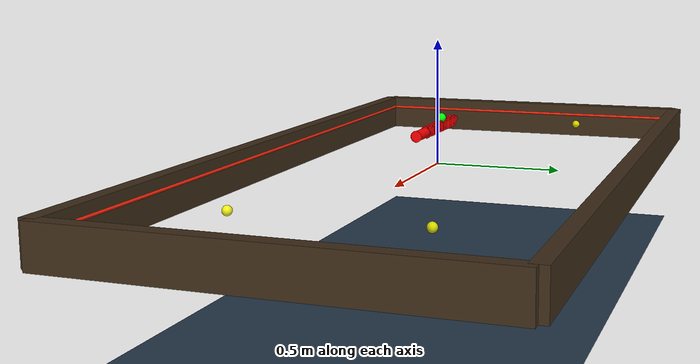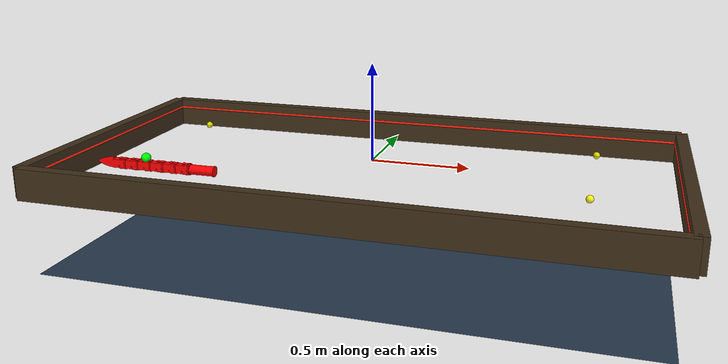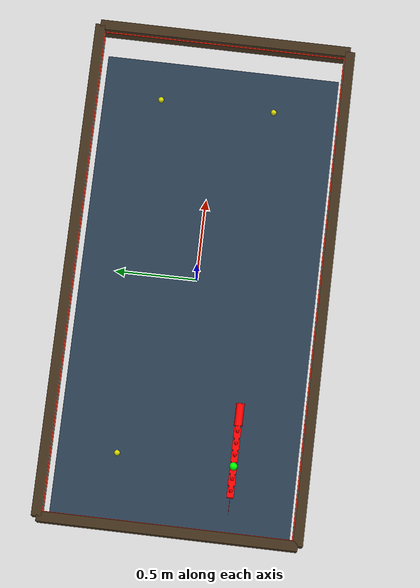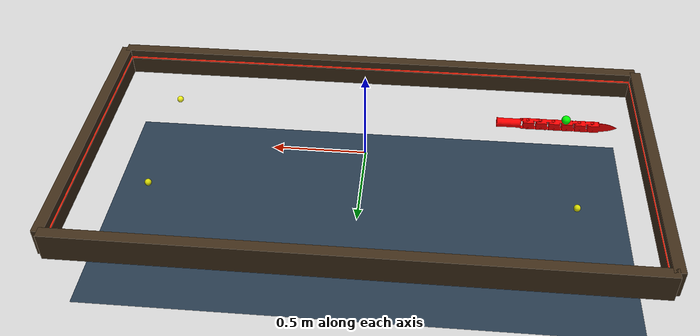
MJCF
<mujoco model="eel_urdf_tethered">
  <compiler angle="radian" meshdir="eel_urdf/meshes" />
  <option timestep="0.001" integrator="RK4" density="998" viscosity="0.001" gravity="0 0 -9.81" />
  <visual>
    <global fovy="45" offwidth="1920" offheight="1080" />
    <quality shadowsize="0" />
    <rgba fog="0 0.5 0.8 1" />
    <map fogstart="1" fogend="5" />
  </visual>
  <asset>
    <mesh name="base_link_mesh" file="base_link.STL" />
    <mesh name="servo1_mesh" file="servo1.STL" />
    <mesh name="servo2_mesh" file="servo2.STL" />
    <mesh name="servo3_mesh" file="servo3.STL" />
    <mesh name="servo4_mesh" file="servo4.STL" />
    <mesh name="servo5_mesh" file="servo5.STL" />
    <mesh name="servo6_mesh" file="servo6.STL" />
    <texture name="texplane" builtin="checker" rgb1=".2 .3 .4" rgb2=".1 .15 .2" type="2d" width="512" height="512" mark="cross" markrgb=".8 .8 .8" />
    <material name="matplane" reflectance="0.5" texture="texplane" texrepeat="4 4" texuniform="true" />
    <material name="water_visual_mat" rgba="0 0.4 0.9 0.2" reflectance="0" shininess="0" specular="0" />
    <material name="wall_brown_mat" rgba="0.25 0.18 0.10 1" reflectance="0.02" specular="0" shininess="0" />
    <material name="eel_mat" rgba="0.79216 0.81961 0.93333 1" reflectance="0.2" specular="0.35" shininess="0.4" />
    <material name="joint_marker_red" rgba="1 0 0 1" specular="0" shininess="0" reflectance="0" />
  </asset>
  <contact>
    <exclude body1="base_link" body2="servo1" />
    <exclude body1="servo1" body2="servo2" />
    <exclude body1="servo2" body2="servo3" />
    <exclude body1="servo3" body2="servo4" />
    <exclude body1="servo4" body2="servo5" />
    <exclude body1="servo5" body2="servo6" />
  </contact>
  <worldbody>
    <include file="environment_3x1_5.xml" />
    <body name="base_link" pos="-0.85 -0.35 -0.02">
      <joint name="root_x" type="slide" pos="0 0 0" axis="1 0 0" limited="false" armature="0.01" damping="0.1" />
      <joint name="root_y" type="slide" pos="0 0 0" axis="0 1 0" limited="false" armature="0.01" damping="0.1" />
      <joint name="root_z_rot" type="hinge" pos="0 0 0" axis="0 0 1" limited="false" armature="0.01" damping="0.1" />
      <inertial pos="0.062748 2.5587E-16 0.00026796" mass="0.083903" fullinertia="4.3479E-05 9.8485E-05 9.6089E-05 -1.3947E-21 5.4417E-08 -3.0251E-23" />
      <geom name="base_link_collision" type="mesh" mesh="base_link_mesh" contype="2" conaffinity="1" group="0" rgba="1 0 0 1" fluidshape="ellipsoid" fluidcoef="0.24 0.0 0.5 0.5 0.5" />
      <geom name="base_link_visual" type="mesh" mesh="base_link_mesh" contype="0" conaffinity="0" group="1" material="eel_mat" />
      <body name="servo1" pos="-0.035 0 0.025706">
        <geom name="servo1_joint_marker" type="sphere" size="0.008" pos="0 0 0" material="joint_marker_red" contype="0" conaffinity="0" group="2" />
        <inertial pos="-0.01159 -6.9584E-08 -0.025118" mass="0.11323" fullinertia="3.6169E-05 6.3328E-05 5.9619E-05 -4.7019E-10 -1.6398E-07 -4.8085E-12" />
        <joint name="servo1" pos="0 0 0" axis="0 0 1" range="-1.5 1.5" actuatorfrcrange="-10 10" armature="0.05" damping="1.5" />
        <geom name="servo1_collision" type="mesh" mesh="servo1_mesh" contype="2" conaffinity="1" group="0" rgba="1 0 0 1" fluidshape="ellipsoid" fluidcoef="0.24 0.0 0.5 0.5 0.5" />
        <geom name="servo1_visual" type="mesh" mesh="servo1_mesh" contype="0" conaffinity="0" group="1" material="eel_mat" />
        <body name="servo2" pos="-0.072 0 0">
          <geom name="servo2_joint_marker" type="sphere" size="0.008" pos="0 0 0" material="joint_marker_red" contype="0" conaffinity="0" group="2" />
          <inertial pos="-0.01159 -6.9584E-08 -0.025118" mass="0.11323" fullinertia="3.6169E-05 6.3328E-05 5.9619E-05 -4.7019E-10 -1.6398E-07 -4.8085E-12" />
          <joint name="servo2" pos="0 0 0" axis="0 0 1" range="-1.5 1.5" actuatorfrcrange="-10 10" armature="0.05" damping="1.5" />
          <geom name="servo2_collision" type="mesh" mesh="servo2_mesh" contype="2" conaffinity="1" group="0" rgba="1 0 0 1" fluidshape="ellipsoid" fluidcoef="0.24 0.0 0.5 0.5 0.5" />
          <geom name="servo2_visual" type="mesh" mesh="servo2_mesh" contype="0" conaffinity="0" group="1" material="eel_mat" />
          <body name="servo3" pos="-0.072 0 0">
            <geom name="servo3_joint_marker" type="sphere" size="0.008" pos="0 0 0" material="joint_marker_red" contype="0" conaffinity="0" group="2" />
            <inertial pos="-0.01159 -6.9584E-08 -0.025118" mass="0.11323" fullinertia="3.6169E-05 6.3328E-05 5.9619E-05 -4.7019E-10 -1.6398E-07 -4.8085E-12" />
            <joint name="servo3" pos="0 0 0" axis="0 0 1" range="-1.5 1.5" actuatorfrcrange="-10 10" armature="0.05" damping="1.5" />
            <geom name="servo3_collision" type="mesh" mesh="servo3_mesh" contype="2" conaffinity="1" group="0" rgba="1 0 0 1" fluidshape="ellipsoid" fluidcoef="0.24 0.0 0.5 0.5 0.5" />
            <geom name="servo3_visual" type="mesh" mesh="servo3_mesh" contype="0" conaffinity="0" group="1" material="eel_mat" />
            <body name="servo4" pos="-0.072 0 0">
              <geom name="servo4_joint_marker" type="sphere" size="0.008" pos="0 0 0" material="joint_marker_red" contype="0" conaffinity="0" group="2" />
              <inertial pos="-0.01159 -6.9584E-08 -0.025118" mass="0.11323" fullinertia="3.6169E-05 6.3328E-05 5.9619E-05 -4.7019E-10 -1.6398E-07 -4.8085E-12" />
              <joint name="servo4" pos="0 0 0" axis="0 0 1" range="-1.5 1.5" actuatorfrcrange="-10 10" armature="0.05" damping="1.5" />
              <geom name="servo4_collision" type="mesh" mesh="servo4_mesh" contype="2" conaffinity="1" group="0" rgba="1 0 0 1" fluidshape="ellipsoid" fluidcoef="0.24 0.0 0.5 0.5 0.5" />
              <geom name="servo4_visual" type="mesh" mesh="servo4_mesh" contype="0" conaffinity="0" group="1" material="eel_mat" />
              <body name="servo5" pos="-0.072 0 0">
                <geom name="servo5_joint_marker" type="sphere" size="0.008" pos="0 0 0" material="joint_marker_red" contype="0" conaffinity="0" group="2" />
                <inertial pos="-0.01159 -6.9584E-08 -0.025118" mass="0.11323" fullinertia="3.6169E-05 6.3328E-05 5.9619E-05 -4.7019E-10 -1.6398E-07 -4.8085E-12" />
                <joint name="servo5" pos="0 0 0" axis="0 0 1" range="-1.5 1.5" actuatorfrcrange="-10 10" armature="0.05" damping="1.5" />
                <geom name="servo5_collision" type="mesh" mesh="servo5_mesh" contype="2" conaffinity="1" group="0" rgba="1 0 0 1" fluidshape="ellipsoid" fluidcoef="0.24 0.0 0.5 0.5 0.5" />
                <geom name="servo5_visual" type="mesh" mesh="servo5_mesh" contype="0" conaffinity="0" group="1" material="eel_mat" />
                <body name="servo6" pos="-0.072 0 0">
                  <geom name="servo6_joint_marker" type="sphere" size="0.008" pos="0 0 0" material="joint_marker_red" contype="0" conaffinity="0" group="2" />
                  <inertial pos="-0.013811 2.5153E-17 -0.025129" mass="0.11626" fullinertia="3.5103E-05 8.4443E-05 8.1511E-05 2.7809E-20 -3.1447E-07 1.5836E-20" />
                  <joint name="servo6" pos="0 0 0" axis="0 0 1" range="-1.5 1.5" actuatorfrcrange="-10 10" armature="0.05" damping="1.5" />
                  <geom name="servo6_collision" type="mesh" mesh="servo6_mesh" contype="2" conaffinity="1" group="0" rgba="1 0 0 1" fluidshape="ellipsoid" fluidcoef="0.24 0.0 0.5 0.5 0.5" />
                  <geom name="servo6_visual" type="mesh" mesh="servo6_mesh" contype="0" conaffinity="0" group="1" material="eel_mat" />
                </body>
              </body>
            </body>
          </body>
        </body>
      </body>
    </body>
  </worldbody>
  <actuator>
    <position name="tether_x" joint="root_x" kp="600" kv="80" ctrlrange="0 0" />
    <position name="tether_y" joint="root_y" kp="600" kv="80" ctrlrange="0 0" />
    <position name="tether_yaw" joint="root_z_rot" kp="80" kv="12" ctrlrange="0 0" />
    <position joint="servo1" kp="100" />
    <position joint="servo2" kp="100" />
    <position joint="servo3" kp="100" />
    <position joint="servo4" kp="100" />
    <position joint="servo5" kp="100" />
    <position joint="servo6" kp="100" />
  </actuator>
</mujoco>

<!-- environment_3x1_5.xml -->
<mujoco>
  <light directional="true" pos="0 0 5" dir="0 0 -1"
         diffuse="0.6 0.6 0.6" specular="0.15 0.15 0.15"/>
  <light pos="1.5 0.75 1" diffuse="0.15 0.2 0.25" specular="0 0 0"/>
  <light pos="-1.5 0 1" diffuse="0.25 0.25 0.3" specular="0 0 0"/>

  <!-- 3 m x 1.5 m tank centered at the world origin. MuJoCo plane sizes are visual half-extents. -->
  <geom name="floor" pos="0 0 -0.5" size="1.5 0.75 0.1" type="plane" material="matplane" contype="1" conaffinity="1"/>
  <geom name="water_surface" type="plane" pos="0 0 0" size="1.48 0.73 0.01" material="water_visual_mat" contype="0" conaffinity="0" group="1"/>

  <geom name="course_bottom" type="capsule" fromto="-1.5 -0.75 0.01 1.5 -0.75 0.01" size="0.006"
        rgba="1 0.15 0.05 0.9" contype="0" conaffinity="0" group="1"/>
  <geom name="course_right" type="capsule" fromto="1.5 -0.75 0.01 1.5 0.75 0.01" size="0.006"
        rgba="1 0.15 0.05 0.9" contype="0" conaffinity="0" group="1"/>
  <geom name="course_top" type="capsule" fromto="1.5 0.75 0.01 -1.5 0.75 0.01" size="0.006"
        rgba="1 0.15 0.05 0.9" contype="0" conaffinity="0" group="1"/>
  <geom name="course_left" type="capsule" fromto="-1.5 0.75 0.01 -1.5 -0.75 0.01" size="0.006"
        rgba="1 0.15 0.05 0.9" contype="0" conaffinity="0" group="1"/>

  <!-- Collision boards around the 3 m x 1.5 m tank. Robot collision geoms use contype=2/conaffinity=1. -->
  <geom name="wall_bottom" type="box" pos="0 -0.78 -0.02" size="1.53 0.03 0.08"
        material="wall_brown_mat" contype="1" conaffinity="2" group="0"/>
  <geom name="wall_top" type="box" pos="0 0.78 -0.02" size="1.53 0.03 0.08"
        material="wall_brown_mat" contype="1" conaffinity="2" group="0"/>
  <geom name="wall_left" type="box" pos="-1.53 0 -0.02" size="0.03 0.78 0.08"
        material="wall_brown_mat" contype="1" conaffinity="2" group="0"/>
  <geom name="wall_right" type="box" pos="1.53 0 -0.02" size="0.03 0.78 0.08"
        material="wall_brown_mat" contype="1" conaffinity="2" group="0"/>

  <geom name="start_marker" type="sphere" pos="-1.10 -0.35 0.02" size="0.025"
        rgba="0 1 0 0.9" contype="0" conaffinity="0" group="1"/>
  <geom name="corner_marker_1" type="sphere" pos="1.10 -0.35 0.02" size="0.018"
        rgba="1 1 0 0.85" contype="0" conaffinity="0" group="1"/>
  <geom name="corner_marker_2" type="sphere" pos="1.10 0.35 0.02" size="0.018"
        rgba="1 1 0 0.85" contype="0" conaffinity="0" group="1"/>
  <geom name="corner_marker_3" type="sphere" pos="-1.10 0.35 0.02" size="0.018"
        rgba="1 1 0 0.85" contype="0" conaffinity="0" group="1"/>
</mujoco>
